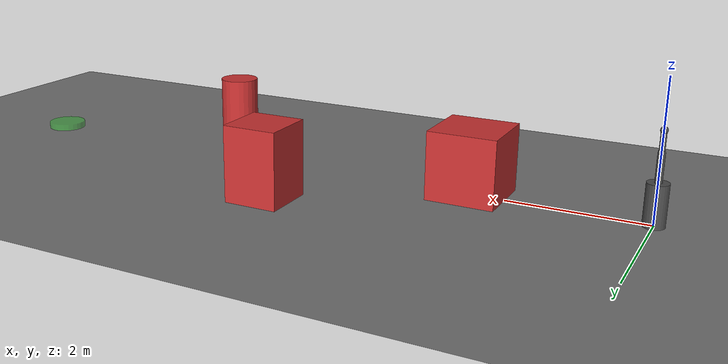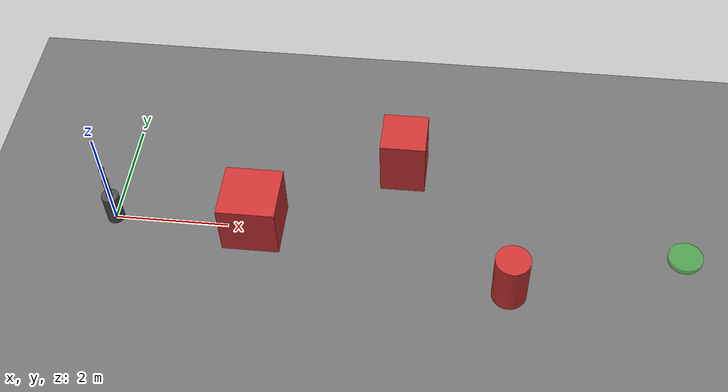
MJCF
<mujoco model="cra_obstacle_navigation">
  <compiler angle="radian" autolimits="true"/>
  <option timestep="0.001" gravity="0 0 -9.81"/>
  <default><joint armature="0.01" damping="0.1"/><geom condim="4" friction="1.0 0.005 0.0001"/></default>
  <asset>
    <texture name="grid" type="2d" builtin="checker" rgb1="0.4 0.4 0.4" rgb2="0.5 0.5 0.5" width="512" height="512"/>
    <material name="grid_mat" texture="grid" texrepeat="10 10" reflectance="0.1"/>
    <material name="obstacle_mat" rgba="0.8 0.2 0.2 1"/>
    <material name="goal_mat" rgba="0.2 0.8 0.2 0.5"/>
    <material name="robot_mat" rgba="0.3 0.3 0.3 1"/>
  </asset>
  <worldbody>
    <geom name="ground" type="plane" size="20 20 0.1" material="grid_mat"/>
    <light name="top" pos="0 0 10" dir="0 0 -1"/>
    <body name="base" pos="0 0 0.3">
      <inertial mass="10.0" pos="0 0 0" diaginertia="0.2 0.2 0.2"/>
      <geom name="base_geom" type="cylinder" size="0.15 0.3" material="robot_mat"/>
      <body name="link1" pos="0 0 0.3"><inertial mass="3" pos="0 0 0.2" diaginertia="0.05 0.05 0.05"/><joint name="joint1" type="hinge" axis="0 0 1" range="-3.14 3.14"/><geom name="l1" type="capsule" size="0.05" fromto="0 0 0 0 0 0.4" material="robot_mat"/><body name="link2" pos="0 0 0.4"><inertial mass="2" pos="0 0 0.2" diaginertia="0.03 0.03 0.03"/><joint name="joint2" type="hinge" axis="0 1 0" range="-1.5 1.5"/><geom name="l2" type="capsule" size="0.04" fromto="0 0 0 0 0 0.3" material="robot_mat"/><body name="ee" pos="0 0 0.3"><inertial mass="0.5" pos="0 0 0" diaginertia="0.005 0.005 0.005"/><geom name="ee_g" type="sphere" size="0.05" material="robot_mat"/></body></body></body>
      <freejoint name="root"/>
    </body>
    <body name="obstacle_1" pos="2.5 0 0.5"><geom name="obs1" type="box" size="0.5 0.5 0.5" material="obstacle_mat"/></body>
    <body name="obstacle_2" pos="5.0 1.5 0.5"><geom name="obs2" type="box" size="0.4 0.4 0.6" material="obstacle_mat"/></body>
    <body name="obstacle_3" pos="7.0 -1.0 0.5"><geom name="obs3" type="cylinder" size="0.3 0.5" material="obstacle_mat"/></body>
    <body name="goal" pos="10.0 0 0.05"><geom name="goal_geom" type="cylinder" size="0.3 0.05" material="goal_mat"/></body>
  </worldbody>
</mujoco>
